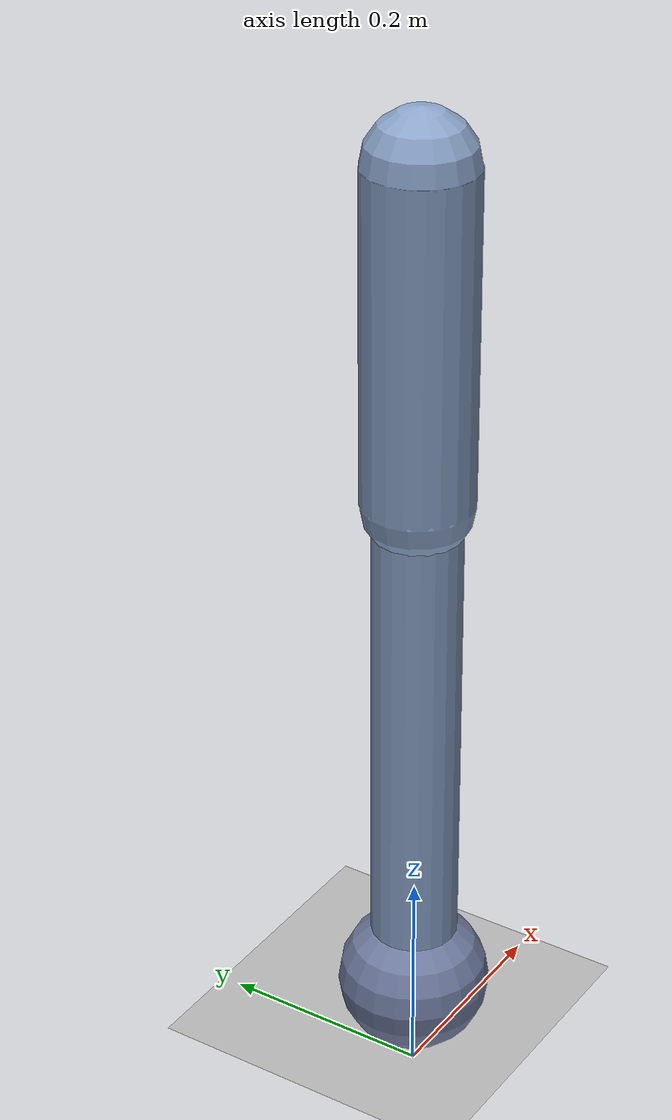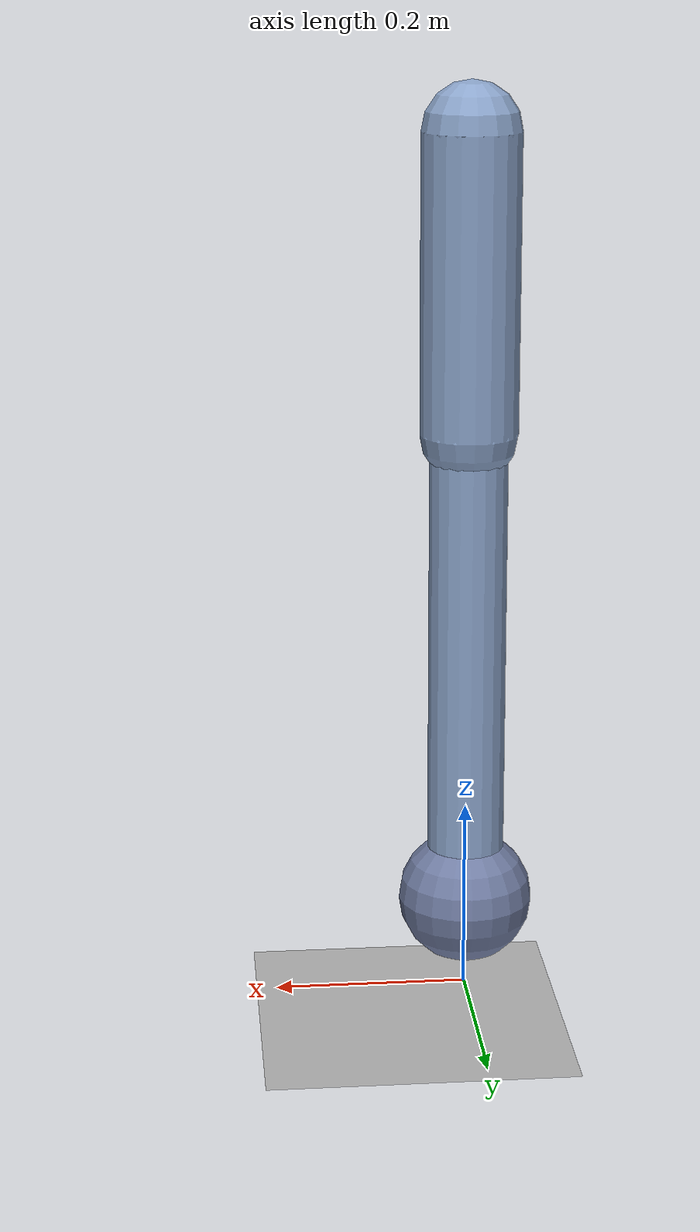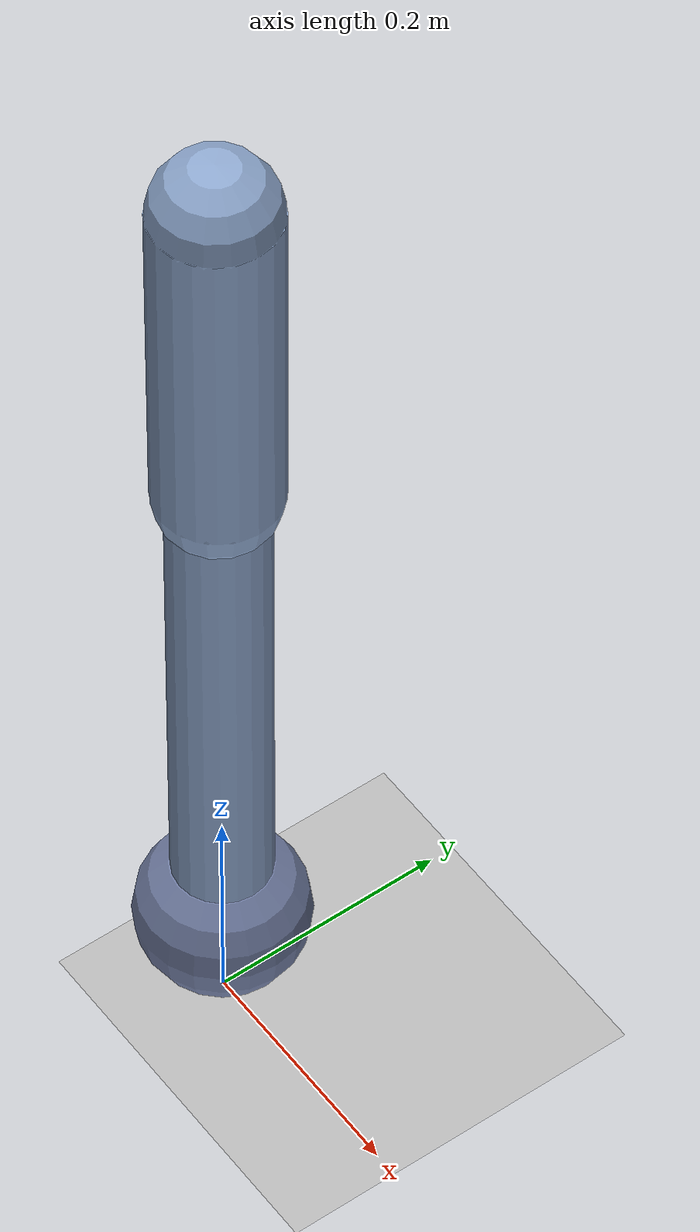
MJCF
<mujoco model="muscle_hopper">

  <option timestep="0.002" gravity="0 0 -9.81" iterations="4"/>

  <worldbody>
    <geom name="floor" type="plane" size="10 10 0.1"
          contype="1" conaffinity="1" condim="3"
          friction="1.5 0.005 0.0001"
          rgba="0.7 0.7 0.7 1"/>

    <body name="torso" pos="0 0 0.75">
      <!-- Sagittal tipping (rooty) + vertical bounce (slide_z).           -->
      <!-- X position is fixed so contact geometry stays under the body.   -->
      <!-- Lateral motion and roll/yaw remain locked (no joints for them). -->
      <joint name="slide_z" type="slide" axis="0 0 1"
             limited="false" armature="0" damping="0"/>
      <joint name="rooty" type="hinge" axis="0 1 0"
             limited="true" range="-0.5 0.5"
             stiffness="80.0" armature="0.1" damping="12.0"/>
      <geom name="torso_geom" type="capsule" size="0.05 0.15"
            mass="5.0" contype="0" conaffinity="0"
            rgba="0.55 0.65 0.80 1"/>

      <body name="shin" pos="0 0 -0.15">
        <!-- Knee: positive angle = extension (leg straightens) -->
        <joint name="knee" type="hinge" axis="0 1 0"
               range="-1.5 0.2" damping="1.5" armature="0.05"/>
        <geom name="shin_geom" type="capsule" size="0.04 0.25" pos="0 0 -0.25"
              mass="1.0" contype="0" conaffinity="0"
              rgba="0.55 0.65 0.80 1"/>

        <body name="foot" pos="0 0 -0.50">
          <geom name="foot_geom" type="sphere" size="0.07"
                mass="0.3" contype="1" conaffinity="1"
                friction="1.5 0.005 0.0001"
                rgba="0.45 0.50 0.65 1"/>
        </body>
      </body>
    </body>
  </worldbody>

  <!-- gear=1 → act[0] directly equals torque in N·m (same convention as worm) -->
  <actuator>
    <motor name="knee_motor" joint="knee" gear="1" ctrlrange="-5000 5000"/>
  </actuator>
</mujoco>
